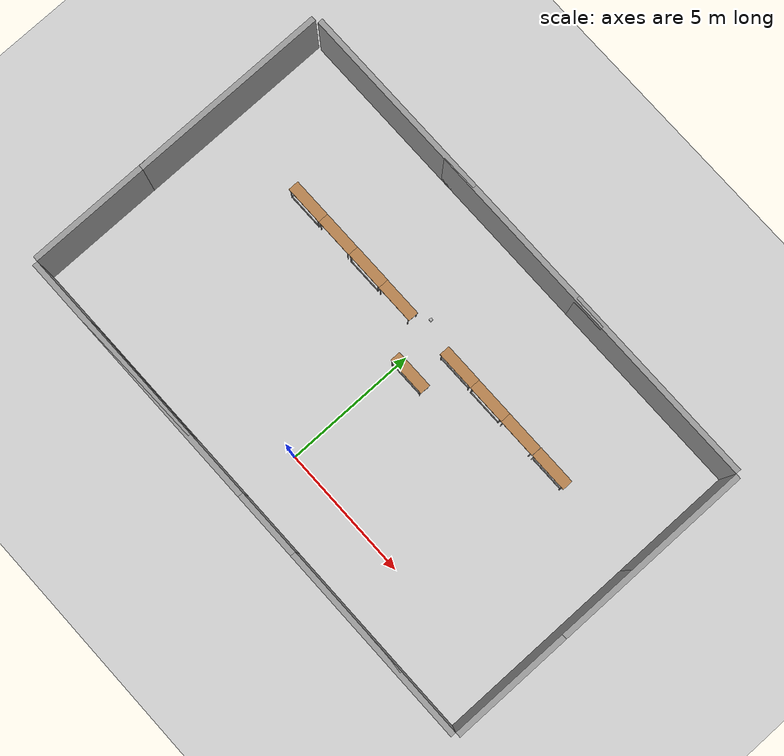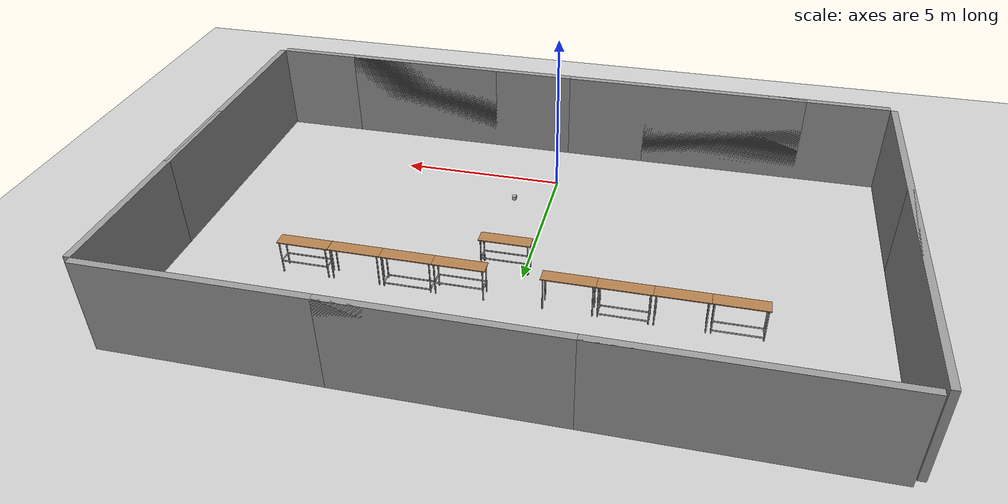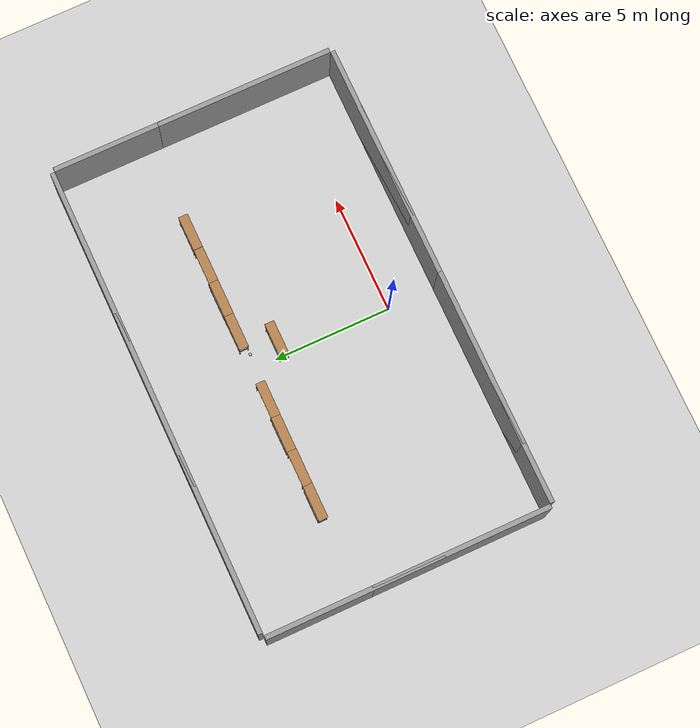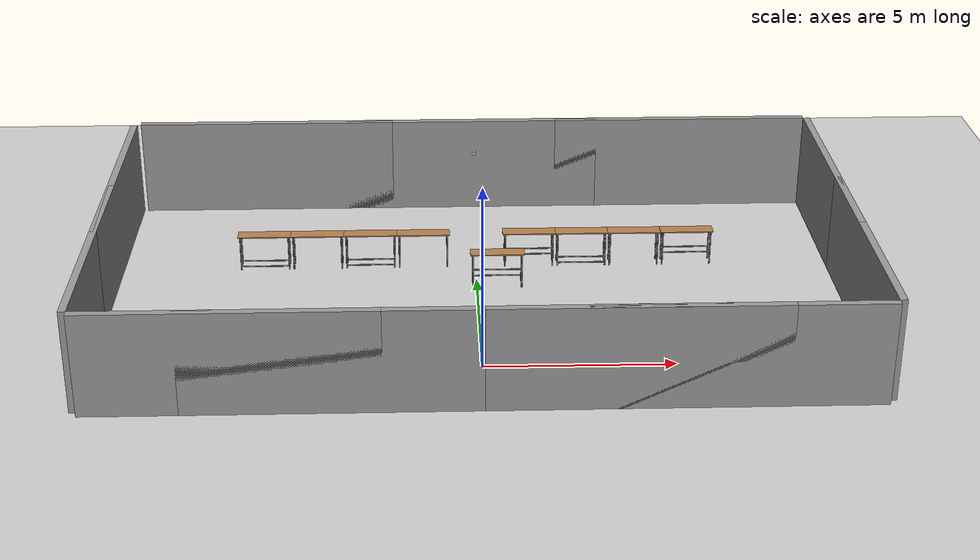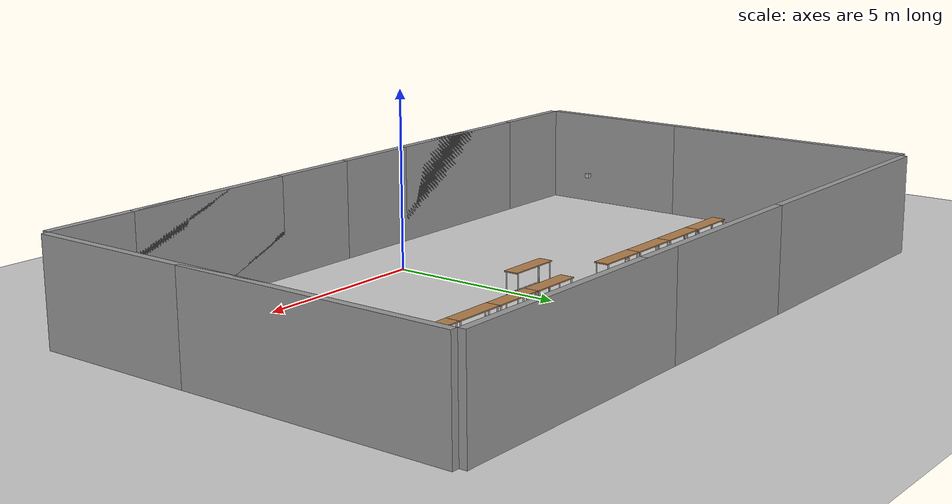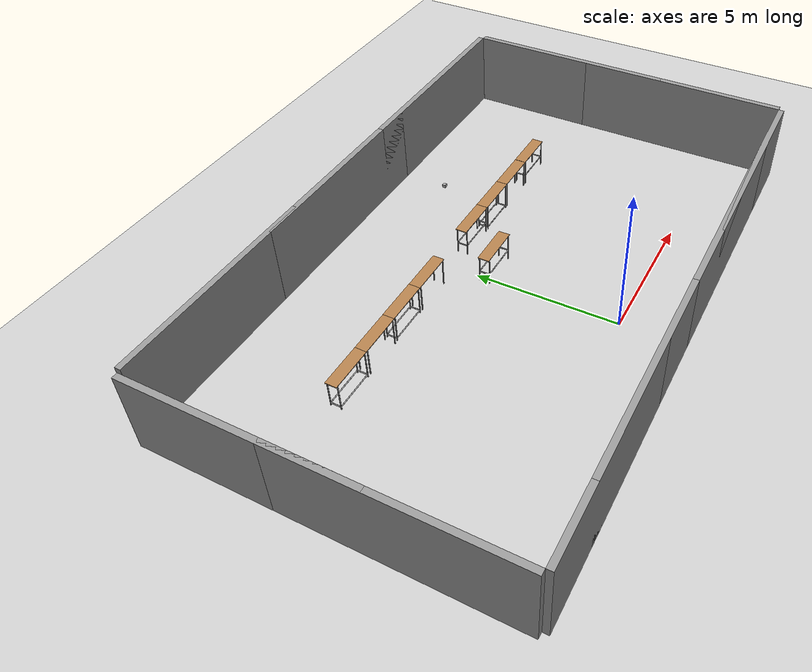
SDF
<sdf version="1.6">
 <world name="default">
  <plugin name="gazebo_occupancy_map" filename="libgazebo_2Dmap_plugin.so">
   <map_resolution>0.1</map_resolution>
   <map_height>0.38</map_height>
   <map_size_x>20</map_size_x>
   <map_size_y>20</map_size_y>
   <init_robot_x>0</init_robot_x>
   <init_robot_y>4</init_robot_y>
  </plugin>
  <light name="sun" type="directional">
   <cast_shadows>0</cast_shadows>
   <pose>0 0 10 0 -0 0</pose>
   <diffuse>0.8 0.8 0.8 1</diffuse>
   <specular>0.2 0.2 0.2 1</specular>
   <attenuation>
    <range>1000</range>
    <constant>0.9</constant>
    <linear>0.01</linear>
    <quadratic>0.001</quadratic>
   </attenuation>
   <direction>-0.5 0.1 -0.9</direction>
  </light>
  <model name="ground_plane">
   <static>1</static>
   <link name="link">
    <collision name="collision">
     <geometry><plane><normal>0 0 1</normal><size>100 100</size></plane></geometry>
     <surface>
      <contact><collide_bitmask>65535</collide_bitmask></contact>
      <friction><ode><mu>100</mu><mu2>50</mu2></ode></friction>
     </surface>
    </collision>
    <visual name="visual">
     <cast_shadows>0</cast_shadows>
     <geometry><plane><normal>0 0 1</normal><size>100 100</size></plane></geometry>
     <material>
      <script><uri>file://media/materials/scripts/gazebo.material</uri><name>Gazebo/Grey</name></script>
     </material>
    </visual>
   </link>
  </model>
  <gravity>0 0 -9.8</gravity>
  <magnetic_field>6e-06 2.3e-05 -4.2e-05</magnetic_field>
  <atmosphere type="adiabatic"/>
  <physics name="default_physics" default="0" type="ode">
   <max_step_size>0.001</max_step_size>
   <real_time_factor>1</real_time_factor>
   <real_time_update_rate>1000</real_time_update_rate>
  </physics>
  <scene><ambient>0.4 0.4 0.4 1</ambient><background>0.7 0.7 0.7 1</background><shadows>0</shadows></scene>
  <audio><device>default</device></audio>
  <spherical_coordinates>
   <surface_model>EARTH_WGS84</surface_model>
   <latitude_deg>0</latitude_deg>
   <longitude_deg>0</longitude_deg>
   <elevation>0</elevation>
   <heading_deg>0</heading_deg>
  </spherical_coordinates>
  <model name="grey_wall">
   <static>1</static>
   <link name="link">
    <pose>0 0 1.4 0 -0 0</pose>
    <collision name="collision"><geometry><box><size>7.5 0.2 2.8</size></box></geometry></collision>
    <visual name="visual">
     <cast_shadows>0</cast_shadows>
     <geometry><box><size>7.5 0.2 2.8</size></box></geometry>
     <material>
      <script>
       <uri>model://grey_wall/materials/scripts</uri>
       <uri>model://grey_wall/materials/textures</uri>
       <name>vrc/grey_wall</name>
      </script>
     </material>
    </visual>
   </link>
   <pose>-3.75 -2.1 0 0 -0 0</pose>
  </model>
  <model name="grey_wall_0">
   <static>1</static>
   <link name="link">
    <pose>0 0 1.4 0 -0 0</pose>
    <collision name="collision"><geometry><box><size>7.5 0.2 2.8</size></box></geometry></collision>
    <visual name="visual">
     <cast_shadows>0</cast_shadows>
     <geometry><box><size>7.5 0.2 2.8</size></box></geometry>
     <material>
      <script>
       <uri>model://grey_wall/materials/scripts</uri>
       <uri>model://grey_wall/materials/textures</uri>
       <name>vrc/grey_wall</name>
      </script>
     </material>
    </visual>
   </link>
   <pose>3.75 -2.1 0 0 -0 0</pose>
  </model>
  <model name="grey_wall_1">
   <static>1</static>
   <link name="link">
    <pose>0 0 1.4 0 -0 0</pose>
    <collision name="collision"><geometry><box><size>7.5 0.2 2.8</size></box></geometry></collision>
    <visual name="visual">
     <cast_shadows>0</cast_shadows>
     <geometry><box><size>7.5 0.2 2.8</size></box></geometry>
     <material>
      <script>
       <uri>model://grey_wall/materials/scripts</uri>
       <uri>model://grey_wall/materials/textures</uri>
       <name>vrc/grey_wall</name>
      </script>
     </material>
    </visual>
   </link>
   <pose>-6.25 -2.1 0 0 -0 0</pose>
  </model>
  <model name="grey_wall_2">
   <static>1</static>
   <link name="link">
    <pose>0 0 1.4 0 -0 0</pose>
    <collision name="collision"><geometry><box><size>7.5 0.2 2.8</size></box></geometry></collision>
    <visual name="visual">
     <cast_shadows>0</cast_shadows>
     <geometry><box><size>7.5 0.2 2.8</size></box></geometry>
     <material>
      <script>
       <uri>model://grey_wall/materials/scripts</uri>
       <uri>model://grey_wall/materials/textures</uri>
       <name>vrc/grey_wall</name>
      </script>
     </material>
    </visual>
   </link>
   <pose>6.25 -2.1 0 0 -0 0</pose>
  </model>
  <model name="grey_wall_3">
   <static>1</static>
   <link name="link">
    <pose>0 0 1.4 0 -0 0</pose>
    <collision name="collision"><geometry><box><size>7.5 0.2 2.8</size></box></geometry></collision>
    <visual name="visual">
     <cast_shadows>0</cast_shadows>
     <geometry><box><size>7.5 0.2 2.8</size></box></geometry>
     <material>
      <script>
       <uri>model://grey_wall/materials/scripts</uri>
       <uri>model://grey_wall/materials/textures</uri>
       <name>vrc/grey_wall</name>
      </script>
     </material>
    </visual>
   </link>
   <pose>-10.1 1.75 0 0 -0 1.5708</pose>
  </model>
  <model name="grey_wall_3_clone">
   <static>1</static>
   <link name="link">
    <pose>0 0 1.4 0 -0 0</pose>
    <collision name="collision"><geometry><box><size>7.5 0.2 2.8</size></box></geometry></collision>
    <visual name="visual">
     <cast_shadows>0</cast_shadows>
     <geometry><box><size>7.5 0.2 2.8</size></box></geometry>
     <material>
      <script>
       <uri>model://grey_wall/materials/scripts</uri>
       <uri>model://grey_wall/materials/textures</uri>
       <name>vrc/grey_wall</name>
      </script>
     </material>
    </visual>
   </link>
   <pose>-10.1 6.25 0 0 -0 1.5708</pose>
  </model>
  <model name="grey_wall_3_clone_clone">
   <static>1</static>
   <link name="link">
    <pose>0 0 1.4 0 -0 0</pose>
    <collision name="collision"><geometry><box><size>7.5 0.2 2.8</size></box></geometry></collision>
    <visual name="visual">
     <cast_shadows>0</cast_shadows>
     <geometry><box><size>7.5 0.2 2.8</size></box></geometry>
     <material>
      <script>
       <uri>model://grey_wall/materials/scripts</uri>
       <uri>model://grey_wall/materials/textures</uri>
       <name>vrc/grey_wall</name>
      </script>
     </material>
    </visual>
   </link>
   <pose>10.1 6.25 0 0 -0 1.5708</pose>
  </model>
  <model name="grey_wall_3_clone_clone_0">
   <static>1</static>
   <link name="link">
    <pose>0 0 1.4 0 -0 0</pose>
    <collision name="collision"><geometry><box><size>7.5 0.2 2.8</size></box></geometry></collision>
    <visual name="visual">
     <cast_shadows>0</cast_shadows>
     <geometry><box><size>7.5 0.2 2.8</size></box></geometry>
     <material>
      <script>
       <uri>model://grey_wall/materials/scripts</uri>
       <uri>model://grey_wall/materials/textures</uri>
       <name>vrc/grey_wall</name>
      </script>
     </material>
    </visual>
   </link>
   <pose>10.1 1.75 0 0 -0 1.5708</pose>
  </model>
  <model name="grey_wall_1_clone">
   <static>1</static>
   <link name="link">
    <pose>0 0 1.4 0 -0 0</pose>
    <collision name="collision"><geometry><box><size>7.5 0.2 2.8</size></box></geometry></collision>
    <visual name="visual">
     <cast_shadows>0</cast_shadows>
     <geometry><box><size>7.5 0.2 2.8</size></box></geometry>
     <material>
      <script>
       <uri>model://grey_wall/materials/scripts</uri>
       <uri>model://grey_wall/materials/textures</uri>
       <name>vrc/grey_wall</name>
      </script>
     </material>
    </visual>
   </link>
   <pose>-6.15 10.1 0 0 -0 0</pose>
  </model>
  <model name="grey_wall_clone">
   <static>1</static>
   <link name="link">
    <pose>0 0 1.4 0 -0 0</pose>
    <collision name="collision"><geometry><box><size>7.5 0.2 2.8</size></box></geometry></collision>
    <visual name="visual">
     <cast_shadows>0</cast_shadows>
     <geometry><box><size>7.5 0.2 2.8</size></box></geometry>
     <material>
      <script>
       <uri>model://grey_wall/materials/scripts</uri>
       <uri>model://grey_wall/materials/textures</uri>
       <name>vrc/grey_wall</name>
      </script>
     </material>
    </visual>
   </link>
   <pose>0 10.1 0 0 -0 0</pose>
  </model>
  <model name="grey_wall_clone_0">
   <static>1</static>
   <link name="link">
    <pose>0 0 1.4 0 -0 0</pose>
    <collision name="collision"><geometry><box><size>7.5 0.2 2.8</size></box></geometry></collision>
    <visual name="visual">
     <cast_shadows>0</cast_shadows>
     <geometry><box><size>7.5 0.2 2.8</size></box></geometry>
     <material>
      <script>
       <uri>model://grey_wall/materials/scripts</uri>
       <uri>model://grey_wall/materials/textures</uri>
       <name>vrc/grey_wall</name>
      </script>
     </material>
    </visual>
   </link>
   <pose>6.25 10.1 0 0 -0 0</pose>
  </model>
  <model name="table_clone">
   <static>1</static>
   <link name="link">
    <collision name="surface">
     <pose>0 0 1 0 -0 0</pose>
     <geometry><box><size>1.5 0.4 0.03</size></box></geometry>
     <surface><friction><ode><mu>0.6</mu><mu2>0.6</mu2></ode></friction></surface>
    </collision>
    <visual name="visual1">
     <pose>0 0 1 0 -0 0</pose>
     <geometry><box><size>1.5 0.4 0.03</size></box></geometry>
     <material>
      <script><uri>file://media/materials/scripts/gazebo.material</uri><name>Gazebo/Wood</name></script>
     </material>
    </visual>
    <collision name="front_left_leg">
     <pose>0.68 0.18 0.5 0 -0 0</pose>
     <geometry><cylinder><radius>0.02</radius><length>1</length></cylinder></geometry>
    </collision>
    <visual name="front_left_leg">
     <pose>0.68 0.18 0.5 0 -0 0</pose>
     <geometry><cylinder><radius>0.02</radius><length>1</length></cylinder></geometry>
     <material>
      <script><uri>file://media/materials/scripts/gazebo.material</uri><name>Gazebo/Grey</name></script>
     </material>
    </visual>
    <collision name="front_right_leg">
     <pose>0.68 -0.18 0.5 0 -0 0</pose>
     <geometry><cylinder><radius>0.02</radius><length>1</length></cylinder></geometry>
    </collision>
    <visual name="front_right_leg">
     <pose>0.68 -0.18 0.5 0 -0 0</pose>
     <geometry><cylinder><radius>0.02</radius><length>1</length></cylinder></geometry>
     <material>
      <script><uri>file://media/materials/scripts/gazebo.material</uri><name>Gazebo/Grey</name></script>
     </material>
    </visual>
    <collision name="back_right_leg">
     <pose>-0.68 -0.18 0.5 0 -0 0</pose>
     <geometry><cylinder><radius>0.02</radius><length>1</length></cylinder></geometry>
    </collision>
    <visual name="back_right_leg">
     <pose>-0.68 -0.18 0.5 0 -0 0</pose>
     <geometry><cylinder><radius>0.02</radius><length>1</length></cylinder></geometry>
     <material>
      <script><uri>file://media/materials/scripts/gazebo.material</uri><name>Gazebo/Grey</name></script>
     </material>
    </visual>
    <collision name="back_left_leg">
     <pose>-0.68 0.18 0.5 0 -0 0</pose>
     <geometry><cylinder><radius>0.02</radius><length>1</length></cylinder></geometry>
    </collision>
    <visual name="back_left_leg">
     <pose>-0.68 0.18 0.5 0 -0 0</pose>
     <geometry><cylinder><radius>0.02</radius><length>1</length></cylinder></geometry>
     <material>
      <script><uri>file://media/materials/scripts/gazebo.material</uri><name>Gazebo/Grey</name></script>
     </material>
    </visual>
   </link>
   <pose>-1.5 6 0 0 -0 0</pose>
  </model>
  <model name="table_clone_1">
   <static>1</static>
   <link name="link">
    <collision name="surface">
     <pose>0 0 1 0 -0 0</pose>
     <geometry><box><size>1.5 0.4 0.03</size></box></geometry>
     <surface><friction><ode><mu>0.6</mu><mu2>0.6</mu2></ode></friction></surface>
    </collision>
    <visual name="visual1">
     <pose>0 0 1 0 -0 0</pose>
     <geometry><box><size>1.5 0.4 0.03</size></box></geometry>
     <material>
      <script><uri>file://media/materials/scripts/gazebo.material</uri><name>Gazebo/Wood</name></script>
     </material>
    </visual>
    <collision name="front_left_leg">
     <pose>0.68 0.18 0.5 0 -0 0</pose>
     <geometry><cylinder><radius>0.02</radius><length>1</length></cylinder></geometry>
    </collision>
    <visual name="front_left_leg">
     <pose>0.68 0.18 0.5 0 -0 0</pose>
     <geometry><cylinder><radius>0.02</radius><length>1</length></cylinder></geometry>
     <material>
      <script><uri>file://media/materials/scripts/gazebo.material</uri><name>Gazebo/Grey</name></script>
     </material>
    </visual>
    <collision name="front_right_leg">
     <pose>0.68 -0.18 0.5 0 -0 0</pose>
     <geometry><cylinder><radius>0.02</radius><length>1</length></cylinder></geometry>
    </collision>
    <visual name="front_right_leg">
     <pose>0.68 -0.18 0.5 0 -0 0</pose>
     <geometry><cylinder><radius>0.02</radius><length>1</length></cylinder></geometry>
     <material>
      <script><uri>file://media/materials/scripts/gazebo.material</uri><name>Gazebo/Grey</name></script>
     </material>
    </visual>
    <collision name="back_right_leg">
     <pose>-0.68 -0.18 0.5 0 -0 0</pose>
     <geometry><cylinder><radius>0.02</radius><length>1</length></cylinder></geometry>
    </collision>
    <visual name="back_right_leg">
     <pose>-0.68 -0.18 0.5 0 -0 0</pose>
     <geometry><cylinder><radius>0.02</radius><length>1</length></cylinder></geometry>
     <material>
      <script><uri>file://media/materials/scripts/gazebo.material</uri><name>Gazebo/Grey</name></script>
     </material>
    </visual>
    <collision name="back_left_leg">
     <pose>-0.68 0.18 0.5 0 -0 0</pose>
     <geometry><cylinder><radius>0.02</radius><length>1</length></cylinder></geometry>
    </collision>
    <visual name="back_left_leg">
     <pose>-0.68 0.18 0.5 0 -0 0</pose>
     <geometry><cylinder><radius>0.02</radius><length>1</length></cylinder></geometry>
     <material>
      <script><uri>file://media/materials/scripts/gazebo.material</uri><name>Gazebo/Grey</name></script>
     </material>
    </visual>
   </link>
   <pose>-4.5 6 0 0 -0 0</pose>
  </model>
  <model name="table_clone_5">
   <static>1</static>
   <link name="link">
    <collision name="surface">
     <pose>0 0 1 0 -0 0</pose>
     <geometry><box><size>1.5 0.4 0.03</size></box></geometry>
     <surface><friction><ode><mu>0.6</mu><mu2>0.6</mu2></ode></friction></surface>
    </collision>
    <visual name="visual1">
     <pose>0 0 1 0 -0 0</pose>
     <geometry><box><size>1.5 0.4 0.03</size></box></geometry>
     <material>
      <script><uri>file://media/materials/scripts/gazebo.material</uri><name>Gazebo/Wood</name></script>
     </material>
    </visual>
    <collision name="front_left_leg">
     <pose>0.68 0.18 0.5 0 -0 0</pose>
     <geometry><cylinder><radius>0.02</radius><length>1</length></cylinder></geometry>
    </collision>
    <visual name="front_left_leg">
     <pose>0.68 0.18 0.5 0 -0 0</pose>
     <geometry><cylinder><radius>0.02</radius><length>1</length></cylinder></geometry>
     <material>
      <script><uri>file://media/materials/scripts/gazebo.material</uri><name>Gazebo/Grey</name></script>
     </material>
    </visual>
    <collision name="front_right_leg">
     <pose>0.68 -0.18 0.5 0 -0 0</pose>
     <geometry><cylinder><radius>0.02</radius><length>1</length></cylinder></geometry>
    </collision>
    <visual name="front_right_leg">
     <pose>0.68 -0.18 0.5 0 -0 0</pose>
     <geometry><cylinder><radius>0.02</radius><length>1</length></cylinder></geometry>
     <material>
      <script><uri>file://media/materials/scripts/gazebo.material</uri><name>Gazebo/Grey</name></script>
     </material>
    </visual>
    <collision name="back_right_leg">
     <pose>-0.68 -0.18 0.5 0 -0 0</pose>
     <geometry><cylinder><radius>0.02</radius><length>1</length></cylinder></geometry>
    </collision>
    <visual name="back_right_leg">
     <pose>-0.68 -0.18 0.5 0 -0 0</pose>
     <geometry><cylinder><radius>0.02</radius><length>1</length></cylinder></geometry>
     <material>
      <script><uri>file://media/materials/scripts/gazebo.material</uri><name>Gazebo/Grey</name></script>
     </material>
    </visual>
    <collision name="back_left_leg">
     <pose>-0.68 0.18 0.5 0 -0 0</pose>
     <geometry><cylinder><radius>0.02</radius><length>1</length></cylinder></geometry>
    </collision>
    <visual name="back_left_leg">
     <pose>-0.68 0.18 0.5 0 -0 0</pose>
     <geometry><cylinder><radius>0.02</radius><length>1</length></cylinder></geometry>
     <material>
      <script><uri>file://media/materials/scripts/gazebo.material</uri><name>Gazebo/Grey</name></script>
     </material>
    </visual>
   </link>
   <pose>4.5 6 0 0 -0 0</pose>
  </model>
  <model name="distorted_camera">
   <link name="link">
    <pose>0.05 0.05 0.05 0 -0 0</pose>
    <inertial>
     <mass>0.1</mass>
     <inertia>
      <ixx>0.000166667</ixx>
      <iyy>0.000166667</iyy>
      <izz>0.000166667</izz>
      <ixy>0</ixy>
      <ixz>0</ixz>
      <iyz>0</iyz>
     </inertia>
    </inertial>
    <collision name="collision"><geometry><box><size>0.1 0.1 0.1</size></box></geometry></collision>
    <visual name="visual"><geometry><box><size>0.1 0.1 0.1</size></box></geometry></visual>
    <gravity>0</gravity>
    <sensor name="camera" type="camera">
     <camera name="__default__">
      <horizontal_fov>1.047</horizontal_fov>
      <image><width>64</width><height>64</height></image>
      <clip><near>0.1</near><far>100</far></clip>
     </camera>
     <plugin name="camera_controller" filename="libgazebo_ros_camera.so">
      <alwaysOn>1</alwaysOn>
      <updateRate>0.0</updateRate>
      <cameraName>top_down_cam</cameraName>
      <imageTopicName>image_raw</imageTopicName>
      <cameraInfoTopicName>camera_info</cameraInfoTopicName>
      <frameName>camera_link</frameName>
      <hackBaseline>0.07</hackBaseline>
      <distortionK1>0.0</distortionK1>
      <distortionK2>0.0</distortionK2>
      <distortionK3>0.0</distortionK3>
      <distortionT1>0.0</distortionT1>
      <distortionT2>0.0</distortionT2>
     </plugin>
     <always_on>1</always_on>
     <update_rate>30</update_rate>
     <visualize>1</visualize>
    </sensor>
   </link>
   <pose>0 6 3.46489 0 1.57 1.57</pose>
  </model>
  <model name="table_0">
   <static>1</static>
   <link name="link">
    <collision name="surface">
     <pose>0 0 1 0 -0 0</pose>
     <geometry><box><size>1.5 0.4 0.03</size></box></geometry>
     <surface><friction><ode><mu>0.6</mu><mu2>0.6</mu2></ode></friction></surface>
    </collision>
    <visual name="visual1">
     <pose>0 0 1 0 -0 0</pose>
     <geometry><box><size>1.5 0.4 0.03</size></box></geometry>
     <material>
      <script><uri>file://media/materials/scripts/gazebo.material</uri><name>Gazebo/Wood</name></script>
     </material>
    </visual>
    <collision name="front_left_leg">
     <pose>0.68 0.18 0.5 0 -0 0</pose>
     <geometry><cylinder><radius>0.02</radius><length>1</length></cylinder></geometry>
    </collision>
    <visual name="front_left_leg">
     <pose>0.68 0.18 0.5 0 -0 0</pose>
     <geometry><cylinder><radius>0.02</radius><length>1</length></cylinder></geometry>
     <material>
      <script><uri>file://media/materials/scripts/gazebo.material</uri><name>Gazebo/Grey</name></script>
     </material>
    </visual>
    <collision name="front_right_leg">
     <pose>0.68 -0.18 0.5 0 -0 0</pose>
     <geometry><cylinder><radius>0.02</radius><length>1</length></cylinder></geometry>
    </collision>
    <visual name="front_right_leg">
     <pose>0.68 -0.18 0.5 0 -0 0</pose>
     <geometry><cylinder><radius>0.02</radius><length>1</length></cylinder></geometry>
     <material>
      <script><uri>file://media/materials/scripts/gazebo.material</uri><name>Gazebo/Grey</name></script>
     </material>
    </visual>
    <collision name="back_right_leg">
     <pose>-0.68 -0.18 0.5 0 -0 0</pose>
     <geometry><cylinder><radius>0.02</radius><length>1</length></cylinder></geometry>
    </collision>
    <visual name="back_right_leg">
     <pose>-0.68 -0.18 0.5 0 -0 0</pose>
     <geometry><cylinder><radius>0.02</radius><length>1</length></cylinder></geometry>
     <material>
      <script><uri>file://media/materials/scripts/gazebo.material</uri><name>Gazebo/Grey</name></script>
     </material>
    </visual>
    <visual name="back_leg_connector">
     <pose>0 -0.18 0.1 0 1.57 0</pose>
     <geometry><cylinder><radius>0.02</radius><length>1.36</length></cylinder></geometry>
     <material>
      <script><uri>file://media/materials/scripts/gazebo.material</uri><name>Gazebo/Grey</name></script>
     </material>
    </visual>
    <visual name="front_leg_connector">
     <pose>0 0.18 0.1 0 1.57 0</pose>
     <geometry><cylinder><radius>0.02</radius><length>1.36</length></cylinder></geometry>
     <material>
      <script><uri>file://media/materials/scripts/gazebo.material</uri><name>Gazebo/Grey</name></script>
     </material>
    </visual>
    <visual name="right_leg_connector">
     <pose>-0.68 0 0.1 0 1.57 1.57</pose>
     <geometry><cylinder><radius>0.02</radius><length>0.36</length></cylinder></geometry>
     <material>
      <script><uri>file://media/materials/scripts/gazebo.material</uri><name>Gazebo/Grey</name></script>
     </material>
    </visual>
    <visual name="left_leg_connector">
     <pose>0.68 0 0.1 0 1.57 1.57</pose>
     <geometry><cylinder><radius>0.02</radius><length>0.36</length></cylinder></geometry>
     <material>
      <script><uri>file://media/materials/scripts/gazebo.material</uri><name>Gazebo/Grey</name></script>
     </material>
    </visual>
    <collision name="back_left_leg">
     <pose>-0.68 0.18 0.5 0 -0 0</pose>
     <geometry><cylinder><radius>0.02</radius><length>1</length></cylinder></geometry>
    </collision>
    <visual name="back_left_leg">
     <pose>-0.68 0.18 0.5 0 -0 0</pose>
     <geometry><cylinder><radius>0.02</radius><length>1</length></cylinder></geometry>
     <material>
      <script><uri>file://media/materials/scripts/gazebo.material</uri><name>Gazebo/Grey</name></script>
     </material>
    </visual>
   </link>
   <pose>-5.99667 5.99998 0 0 -0 0</pose>
  </model>
  <model name="table_1">
   <static>1</static>
   <link name="link">
    <collision name="surface">
     <pose>0 0 1 0 -0 0</pose>
     <geometry><box><size>1.5 0.4 0.03</size></box></geometry>
     <surface><friction><ode><mu>0.6</mu><mu2>0.6</mu2></ode></friction></surface>
    </collision>
    <visual name="visual1">
     <pose>0 0 1 0 -0 0</pose>
     <geometry><box><size>1.5 0.4 0.03</size></box></geometry>
     <material>
      <script><uri>file://media/materials/scripts/gazebo.material</uri><name>Gazebo/Wood</name></script>
     </material>
    </visual>
    <collision name="front_left_leg">
     <pose>0.68 0.18 0.5 0 -0 0</pose>
     <geometry><cylinder><radius>0.02</radius><length>1</length></cylinder></geometry>
    </collision>
    <visual name="front_left_leg">
     <pose>0.68 0.18 0.5 0 -0 0</pose>
     <geometry><cylinder><radius>0.02</radius><length>1</length></cylinder></geometry>
     <material>
      <script><uri>file://media/materials/scripts/gazebo.material</uri><name>Gazebo/Grey</name></script>
     </material>
    </visual>
    <collision name="front_right_leg">
     <pose>0.68 -0.18 0.5 0 -0 0</pose>
     <geometry><cylinder><radius>0.02</radius><length>1</length></cylinder></geometry>
    </collision>
    <visual name="front_right_leg">
     <pose>0.68 -0.18 0.5 0 -0 0</pose>
     <geometry><cylinder><radius>0.02</radius><length>1</length></cylinder></geometry>
     <material>
      <script><uri>file://media/materials/scripts/gazebo.material</uri><name>Gazebo/Grey</name></script>
     </material>
    </visual>
    <collision name="back_right_leg">
     <pose>-0.68 -0.18 0.5 0 -0 0</pose>
     <geometry><cylinder><radius>0.02</radius><length>1</length></cylinder></geometry>
    </collision>
    <visual name="back_right_leg">
     <pose>-0.68 -0.18 0.5 0 -0 0</pose>
     <geometry><cylinder><radius>0.02</radius><length>1</length></cylinder></geometry>
     <material>
      <script><uri>file://media/materials/scripts/gazebo.material</uri><name>Gazebo/Grey</name></script>
     </material>
    </visual>
    <visual name="back_leg_connector">
     <pose>0 -0.18 0.1 0 1.57 0</pose>
     <geometry><cylinder><radius>0.02</radius><length>1.36</length></cylinder></geometry>
     <material>
      <script><uri>file://media/materials/scripts/gazebo.material</uri><name>Gazebo/Grey</name></script>
     </material>
    </visual>
    <visual name="front_leg_connector">
     <pose>0 0.18 0.1 0 1.57 0</pose>
     <geometry><cylinder><radius>0.02</radius><length>1.36</length></cylinder></geometry>
     <material>
      <script><uri>file://media/materials/scripts/gazebo.material</uri><name>Gazebo/Grey</name></script>
     </material>
    </visual>
    <visual name="right_leg_connector">
     <pose>-0.68 0 0.1 0 1.57 1.57</pose>
     <geometry><cylinder><radius>0.02</radius><length>0.36</length></cylinder></geometry>
     <material>
      <script><uri>file://media/materials/scripts/gazebo.material</uri><name>Gazebo/Grey</name></script>
     </material>
    </visual>
    <visual name="left_leg_connector">
     <pose>0.68 0 0.1 0 1.57 1.57</pose>
     <geometry><cylinder><radius>0.02</radius><length>0.36</length></cylinder></geometry>
     <material>
      <script><uri>file://media/materials/scripts/gazebo.material</uri><name>Gazebo/Grey</name></script>
     </material>
    </visual>
    <collision name="back_left_leg">
     <pose>-0.68 0.18 0.5 0 -0 0</pose>
     <geometry><cylinder><radius>0.02</radius><length>1</length></cylinder></geometry>
    </collision>
    <visual name="back_left_leg">
     <pose>-0.68 0.18 0.5 0 -0 0</pose>
     <geometry><cylinder><radius>0.02</radius><length>1</length></cylinder></geometry>
     <material>
      <script><uri>file://media/materials/scripts/gazebo.material</uri><name>Gazebo/Grey</name></script>
     </material>
    </visual>
   </link>
   <pose>-3.00016 6.00483 0 0 -0 0</pose>
  </model>
  <model name="table_2">
   <static>1</static>
   <link name="link">
    <collision name="surface">
     <pose>0 0 1 0 -0 0</pose>
     <geometry><box><size>1.5 0.4 0.03</size></box></geometry>
     <surface><friction><ode><mu>0.6</mu><mu2>0.6</mu2></ode></friction></surface>
    </collision>
    <visual name="visual1">
     <pose>0 0 1 0 -0 0</pose>
     <geometry><box><size>1.5 0.4 0.03</size></box></geometry>
     <material>
      <script><uri>file://media/materials/scripts/gazebo.material</uri><name>Gazebo/Wood</name></script>
     </material>
    </visual>
    <collision name="front_left_leg">
     <pose>0.68 0.18 0.5 0 -0 0</pose>
     <geometry><cylinder><radius>0.02</radius><length>1</length></cylinder></geometry>
    </collision>
    <visual name="front_left_leg">
     <pose>0.68 0.18 0.5 0 -0 0</pose>
     <geometry><cylinder><radius>0.02</radius><length>1</length></cylinder></geometry>
     <material>
      <script><uri>file://media/materials/scripts/gazebo.material</uri><name>Gazebo/Grey</name></script>
     </material>
    </visual>
    <collision name="front_right_leg">
     <pose>0.68 -0.18 0.5 0 -0 0</pose>
     <geometry><cylinder><radius>0.02</radius><length>1</length></cylinder></geometry>
    </collision>
    <visual name="front_right_leg">
     <pose>0.68 -0.18 0.5 0 -0 0</pose>
     <geometry><cylinder><radius>0.02</radius><length>1</length></cylinder></geometry>
     <material>
      <script><uri>file://media/materials/scripts/gazebo.material</uri><name>Gazebo/Grey</name></script>
     </material>
    </visual>
    <collision name="back_right_leg">
     <pose>-0.68 -0.18 0.5 0 -0 0</pose>
     <geometry><cylinder><radius>0.02</radius><length>1</length></cylinder></geometry>
    </collision>
    <visual name="back_right_leg">
     <pose>-0.68 -0.18 0.5 0 -0 0</pose>
     <geometry><cylinder><radius>0.02</radius><length>1</length></cylinder></geometry>
     <material>
      <script><uri>file://media/materials/scripts/gazebo.material</uri><name>Gazebo/Grey</name></script>
     </material>
    </visual>
    <visual name="back_leg_connector">
     <pose>0 -0.18 0.1 0 1.57 0</pose>
     <geometry><cylinder><radius>0.02</radius><length>1.36</length></cylinder></geometry>
     <material>
      <script><uri>file://media/materials/scripts/gazebo.material</uri><name>Gazebo/Grey</name></script>
     </material>
    </visual>
    <visual name="front_leg_connector">
     <pose>0 0.18 0.1 0 1.57 0</pose>
     <geometry><cylinder><radius>0.02</radius><length>1.36</length></cylinder></geometry>
     <material>
      <script><uri>file://media/materials/scripts/gazebo.material</uri><name>Gazebo/Grey</name></script>
     </material>
    </visual>
    <visual name="right_leg_connector">
     <pose>-0.68 0 0.1 0 1.57 1.57</pose>
     <geometry><cylinder><radius>0.02</radius><length>0.36</length></cylinder></geometry>
     <material>
      <script><uri>file://media/materials/scripts/gazebo.material</uri><name>Gazebo/Grey</name></script>
     </material>
    </visual>
    <visual name="left_leg_connector">
     <pose>0.68 0 0.1 0 1.57 1.57</pose>
     <geometry><cylinder><radius>0.02</radius><length>0.36</length></cylinder></geometry>
     <material>
      <script><uri>file://media/materials/scripts/gazebo.material</uri><name>Gazebo/Grey</name></script>
     </material>
    </visual>
    <collision name="back_left_leg">
     <pose>-0.68 0.18 0.5 0 -0 0</pose>
     <geometry><cylinder><radius>0.02</radius><length>1</length></cylinder></geometry>
    </collision>
    <visual name="back_left_leg">
     <pose>-0.68 0.18 0.5 0 -0 0</pose>
     <geometry><cylinder><radius>0.02</radius><length>1</length></cylinder></geometry>
     <material>
      <script><uri>file://media/materials/scripts/gazebo.material</uri><name>Gazebo/Grey</name></script>
     </material>
    </visual>
   </link>
   <pose>3.00354 6.0024 0 0 -0 0</pose>
  </model>
  <model name="table">
   <static>1</static>
   <link name="link">
    <collision name="surface">
     <pose>0 0 1 0 -0 0</pose>
     <geometry><box><size>1.5 0.4 0.03</size></box></geometry>
     <surface><friction><ode><mu>0.6</mu><mu2>0.6</mu2></ode></friction></surface>
    </collision>
    <visual name="visual1">
     <pose>0 0 1 0 -0 0</pose>
     <geometry><box><size>1.5 0.4 0.03</size></box></geometry>
     <material>
      <script><uri>file://media/materials/scripts/gazebo.material</uri><name>Gazebo/Wood</name></script>
     </material>
    </visual>
    <collision name="front_left_leg">
     <pose>0.68 0.18 0.5 0 -0 0</pose>
     <geometry><cylinder><radius>0.02</radius><length>1</length></cylinder></geometry>
    </collision>
    <visual name="front_left_leg">
     <pose>0.68 0.18 0.5 0 -0 0</pose>
     <geometry><cylinder><radius>0.02</radius><length>1</length></cylinder></geometry>
     <material>
      <script><uri>file://media/materials/scripts/gazebo.material</uri><name>Gazebo/Grey</name></script>
     </material>
    </visual>
    <collision name="front_right_leg">
     <pose>0.68 -0.18 0.5 0 -0 0</pose>
     <geometry><cylinder><radius>0.02</radius><length>1</length></cylinder></geometry>
    </collision>
    <visual name="front_right_leg">
     <pose>0.68 -0.18 0.5 0 -0 0</pose>
     <geometry><cylinder><radius>0.02</radius><length>1</length></cylinder></geometry>
     <material>
      <script><uri>file://media/materials/scripts/gazebo.material</uri><name>Gazebo/Grey</name></script>
     </material>
    </visual>
    <collision name="back_right_leg">
     <pose>-0.68 -0.18 0.5 0 -0 0</pose>
     <geometry><cylinder><radius>0.02</radius><length>1</length></cylinder></geometry>
    </collision>
    <visual name="back_right_leg">
     <pose>-0.68 -0.18 0.5 0 -0 0</pose>
     <geometry><cylinder><radius>0.02</radius><length>1</length></cylinder></geometry>
     <material>
      <script><uri>file://media/materials/scripts/gazebo.material</uri><name>Gazebo/Grey</name></script>
     </material>
    </visual>
    <collision name="back_leg_connector">
     <pose>0 -0.18 0.38 0 1.57 0</pose>
     <geometry><cylinder><radius>0.02</radius><length>1.36</length></cylinder></geometry>
    </collision>
    <visual name="back_leg_connector">
     <pose>0 -0.18 0.38 0 1.57 0</pose>
     <geometry><cylinder><radius>0.02</radius><length>1.36</length></cylinder></geometry>
     <material>
      <script><uri>file://media/materials/scripts/gazebo.material</uri><name>Gazebo/Grey</name></script>
     </material>
    </visual>
    <collision name="front_leg_connector">
     <pose>0 0.18 0.38 0 1.57 0</pose>
     <geometry><cylinder><radius>0.02</radius><length>1.36</length></cylinder></geometry>
    </collision>
    <visual name="front_leg_connector">
     <pose>0 0.18 0.38 0 1.57 0</pose>
     <geometry><cylinder><radius>0.02</radius><length>1.36</length></cylinder></geometry>
     <material>
      <script><uri>file://media/materials/scripts/gazebo.material</uri><name>Gazebo/Grey</name></script>
     </material>
    </visual>
    <collision name="right_leg_connector">
     <pose>-0.68 0 0.38 0 1.57 1.57</pose>
     <geometry><cylinder><radius>0.02</radius><length>0.36</length></cylinder></geometry>
    </collision>
    <visual name="right_leg_connector">
     <pose>-0.68 0 0.38 0 1.57 1.57</pose>
     <geometry><cylinder><radius>0.02</radius><length>0.36</length></cylinder></geometry>
     <material>
      <script><uri>file://media/materials/scripts/gazebo.material</uri><name>Gazebo/Grey</name></script>
     </material>
    </visual>
    <collision name="left_leg_connector">
     <pose>0.68 0 0.38 0 1.57 1.57</pose>
     <geometry><cylinder><radius>0.02</radius><length>0.36</length></cylinder></geometry>
    </collision>
    <visual name="left_leg_connector">
     <pose>0.68 0 0.38 0 1.57 1.57</pose>
     <geometry><cylinder><radius>0.02</radius><length>0.36</length></cylinder></geometry>
     <material>
      <script><uri>file://media/materials/scripts/gazebo.material</uri><name>Gazebo/Grey</name></script>
     </material>
    </visual>
    <collision name="back_left_leg">
     <pose>-0.68 0.18 0.5 0 -0 0</pose>
     <geometry><cylinder><radius>0.02</radius><length>1</length></cylinder></geometry>
    </collision>
    <visual name="back_left_leg">
     <pose>-0.68 0.18 0.5 0 -0 0</pose>
     <geometry><cylinder><radius>0.02</radius><length>1</length></cylinder></geometry>
     <material>
      <script><uri>file://media/materials/scripts/gazebo.material</uri><name>Gazebo/Grey</name></script>
     </material>
    </visual>
   </link>
   <pose>0.558694 4.66884 0 0 -0 0</pose>
  </model>
  <model name="table_3">
   <static>1</static>
   <link name="link">
    <collision name="surface">
     <pose>0 0 1 0 -0 0</pose>
     <geometry><box><size>1.5 0.4 0.03</size></box></geometry>
     <surface><friction><ode><mu>0.6</mu><mu2>0.6</mu2></ode></friction></surface>
    </collision>
    <visual name="visual1">
     <pose>0 0 1 0 -0 0</pose>
     <geometry><box><size>1.5 0.4 0.03</size></box></geometry>
     <material>
      <script><uri>file://media/materials/scripts/gazebo.material</uri><name>Gazebo/Wood</name></script>
     </material>
    </visual>
    <collision name="front_left_leg">
     <pose>0.68 0.18 0.5 0 -0 0</pose>
     <geometry><cylinder><radius>0.02</radius><length>1</length></cylinder></geometry>
    </collision>
    <visual name="front_left_leg">
     <pose>0.68 0.18 0.5 0 -0 0</pose>
     <geometry><cylinder><radius>0.02</radius><length>1</length></cylinder></geometry>
     <material>
      <script><uri>file://media/materials/scripts/gazebo.material</uri><name>Gazebo/Grey</name></script>
     </material>
    </visual>
    <collision name="front_right_leg">
     <pose>0.68 -0.18 0.5 0 -0 0</pose>
     <geometry><cylinder><radius>0.02</radius><length>1</length></cylinder></geometry>
    </collision>
    <visual name="front_right_leg">
     <pose>0.68 -0.18 0.5 0 -0 0</pose>
     <geometry><cylinder><radius>0.02</radius><length>1</length></cylinder></geometry>
     <material>
      <script><uri>file://media/materials/scripts/gazebo.material</uri><name>Gazebo/Grey</name></script>
     </material>
    </visual>
    <collision name="back_right_leg">
     <pose>-0.68 -0.18 0.5 0 -0 0</pose>
     <geometry><cylinder><radius>0.02</radius><length>1</length></cylinder></geometry>
    </collision>
    <visual name="back_right_leg">
     <pose>-0.68 -0.18 0.5 0 -0 0</pose>
     <geometry><cylinder><radius>0.02</radius><length>1</length></cylinder></geometry>
     <material>
      <script><uri>file://media/materials/scripts/gazebo.material</uri><name>Gazebo/Grey</name></script>
     </material>
    </visual>
    <collision name="back_leg_connector">
     <pose>0 -0.18 0.38 0 1.57 0</pose>
     <geometry><cylinder><radius>0.02</radius><length>1.36</length></cylinder></geometry>
    </collision>
    <visual name="back_leg_connector">
     <pose>0 -0.18 0.38 0 1.57 0</pose>
     <geometry><cylinder><radius>0.02</radius><length>1.36</length></cylinder></geometry>
     <material>
      <script><uri>file://media/materials/scripts/gazebo.material</uri><name>Gazebo/Grey</name></script>
     </material>
    </visual>
    <collision name="front_leg_connector">
     <pose>0 0.18 0.38 0 1.57 0</pose>
     <geometry><cylinder><radius>0.02</radius><length>1.36</length></cylinder></geometry>
    </collision>
    <visual name="front_leg_connector">
     <pose>0 0.18 0.38 0 1.57 0</pose>
     <geometry><cylinder><radius>0.02</radius><length>1.36</length></cylinder></geometry>
     <material>
      <script><uri>file://media/materials/scripts/gazebo.material</uri><name>Gazebo/Grey</name></script>
     </material>
    </visual>
    <collision name="right_leg_connector">
     <pose>-0.68 0 0.38 0 1.57 1.57</pose>
     <geometry><cylinder><radius>0.02</radius><length>0.36</length></cylinder></geometry>
    </collision>
    <visual name="right_leg_connector">
     <pose>-0.68 0 0.38 0 1.57 1.57</pose>
     <geometry><cylinder><radius>0.02</radius><length>0.36</length></cylinder></geometry>
     <material>
      <script><uri>file://media/materials/scripts/gazebo.material</uri><name>Gazebo/Grey</name></script>
     </material>
    </visual>
    <collision name="left_leg_connector">
     <pose>0.68 0 0.38 0 1.57 1.57</pose>
     <geometry><cylinder><radius>0.02</radius><length>0.36</length></cylinder></geometry>
    </collision>
    <visual name="left_leg_connector">
     <pose>0.68 0 0.38 0 1.57 1.57</pose>
     <geometry><cylinder><radius>0.02</radius><length>0.36</length></cylinder></geometry>
     <material>
      <script><uri>file://media/materials/scripts/gazebo.material</uri><name>Gazebo/Grey</name></script>
     </material>
    </visual>
    <collision name="back_left_leg">
     <pose>-0.68 0.18 0.5 0 -0 0</pose>
     <geometry><cylinder><radius>0.02</radius><length>1</length></cylinder></geometry>
    </collision>
    <visual name="back_left_leg">
     <pose>-0.68 0.18 0.5 0 -0 0</pose>
     <geometry><cylinder><radius>0.02</radius><length>1</length></cylinder></geometry>
     <material>
      <script><uri>file://media/materials/scripts/gazebo.material</uri><name>Gazebo/Grey</name></script>
     </material>
    </visual>
   </link>
   <pose>1.50681 6.00699 0 0 -0 0</pose>
  </model>
  <model name="table_4">
   <static>1</static>
   <link name="link">
    <collision name="surface">
     <pose>0 0 1 0 -0 0</pose>
     <geometry><box><size>1.5 0.4 0.03</size></box></geometry>
     <surface><friction><ode><mu>0.6</mu><mu2>0.6</mu2></ode></friction></surface>
    </collision>
    <visual name="visual1">
     <pose>0 0 1 0 -0 0</pose>
     <geometry><box><size>1.5 0.4 0.03</size></box></geometry>
     <material>
      <script><uri>file://media/materials/scripts/gazebo.material</uri><name>Gazebo/Wood</name></script>
     </material>
    </visual>
    <collision name="front_left_leg">
     <pose>0.68 0.18 0.5 0 -0 0</pose>
     <geometry><cylinder><radius>0.02</radius><length>1</length></cylinder></geometry>
    </collision>
    <visual name="front_left_leg">
     <pose>0.68 0.18 0.5 0 -0 0</pose>
     <geometry><cylinder><radius>0.02</radius><length>1</length></cylinder></geometry>
     <material>
      <script><uri>file://media/materials/scripts/gazebo.material</uri><name>Gazebo/Grey</name></script>
     </material>
    </visual>
    <collision name="front_right_leg">
     <pose>0.68 -0.18 0.5 0 -0 0</pose>
     <geometry><cylinder><radius>0.02</radius><length>1</length></cylinder></geometry>
    </collision>
    <visual name="front_right_leg">
     <pose>0.68 -0.18 0.5 0 -0 0</pose>
     <geometry><cylinder><radius>0.02</radius><length>1</length></cylinder></geometry>
     <material>
      <script><uri>file://media/materials/scripts/gazebo.material</uri><name>Gazebo/Grey</name></script>
     </material>
    </visual>
    <collision name="back_right_leg">
     <pose>-0.68 -0.18 0.5 0 -0 0</pose>
     <geometry><cylinder><radius>0.02</radius><length>1</length></cylinder></geometry>
    </collision>
    <visual name="back_right_leg">
     <pose>-0.68 -0.18 0.5 0 -0 0</pose>
     <geometry><cylinder><radius>0.02</radius><length>1</length></cylinder></geometry>
     <material>
      <script><uri>file://media/materials/scripts/gazebo.material</uri><name>Gazebo/Grey</name></script>
     </material>
    </visual>
    <collision name="back_leg_connector">
     <pose>0 -0.18 0.38 0 1.57 0</pose>
     <geometry><cylinder><radius>0.02</radius><length>1.36</length></cylinder></geometry>
    </collision>
    <visual name="back_leg_connector">
     <pose>0 -0.18 0.38 0 1.57 0</pose>
     <geometry><cylinder><radius>0.02</radius><length>1.36</length></cylinder></geometry>
     <material>
      <script><uri>file://media/materials/scripts/gazebo.material</uri><name>Gazebo/Grey</name></script>
     </material>
    </visual>
    <collision name="front_leg_connector">
     <pose>0 0.18 0.38 0 1.57 0</pose>
     <geometry><cylinder><radius>0.02</radius><length>1.36</length></cylinder></geometry>
    </collision>
    <visual name="front_leg_connector">
     <pose>0 0.18 0.38 0 1.57 0</pose>
     <geometry><cylinder><radius>0.02</radius><length>1.36</length></cylinder></geometry>
     <material>
      <script><uri>file://media/materials/scripts/gazebo.material</uri><name>Gazebo/Grey</name></script>
     </material>
    </visual>
    <collision name="right_leg_connector">
     <pose>-0.68 0 0.38 0 1.57 1.57</pose>
     <geometry><cylinder><radius>0.02</radius><length>0.36</length></cylinder></geometry>
    </collision>
    <visual name="right_leg_connector">
     <pose>-0.68 0 0.38 0 1.57 1.57</pose>
     <geometry><cylinder><radius>0.02</radius><length>0.36</length></cylinder></geometry>
     <material>
      <script><uri>file://media/materials/scripts/gazebo.material</uri><name>Gazebo/Grey</name></script>
     </material>
    </visual>
    <collision name="left_leg_connector">
     <pose>0.68 0 0.38 0 1.57 1.57</pose>
     <geometry><cylinder><radius>0.02</radius><length>0.36</length></cylinder></geometry>
    </collision>
    <visual name="left_leg_connector">
     <pose>0.68 0 0.38 0 1.57 1.57</pose>
     <geometry><cylinder><radius>0.02</radius><length>0.36</length></cylinder></geometry>
     <material>
      <script><uri>file://media/materials/scripts/gazebo.material</uri><name>Gazebo/Grey</name></script>
     </material>
    </visual>
    <collision name="back_left_leg">
     <pose>-0.68 0.18 0.5 0 -0 0</pose>
     <geometry><cylinder><radius>0.02</radius><length>1</length></cylinder></geometry>
    </collision>
    <visual name="back_left_leg">
     <pose>-0.68 0.18 0.5 0 -0 0</pose>
     <geometry><cylinder><radius>0.02</radius><length>1</length></cylinder></geometry>
     <material>
      <script><uri>file://media/materials/scripts/gazebo.material</uri><name>Gazebo/Grey</name></script>
     </material>
    </visual>
   </link>
   <pose>6.00676 6.00432 0 0 -0 0</pose>
  </model>
 </world>
</sdf>
